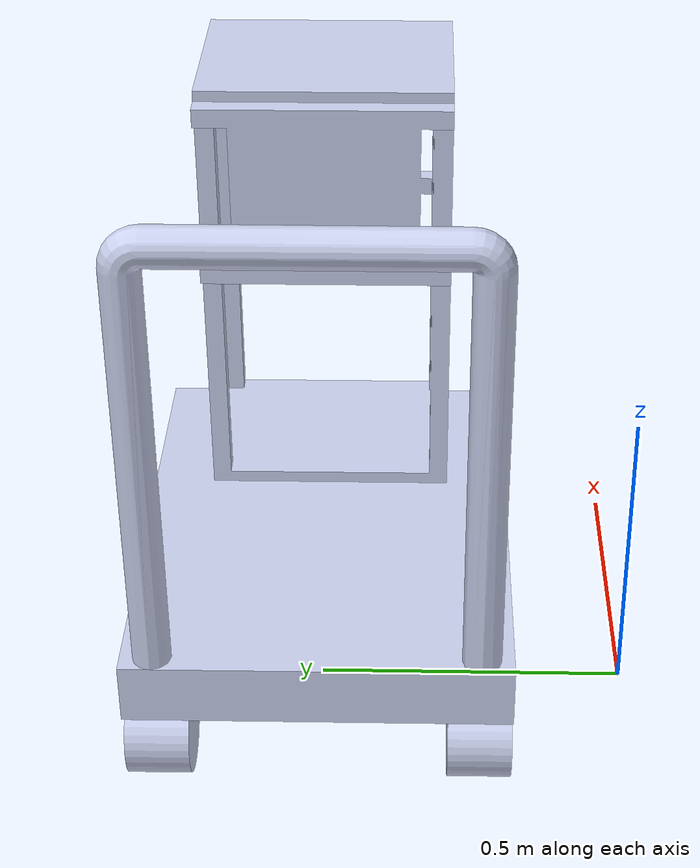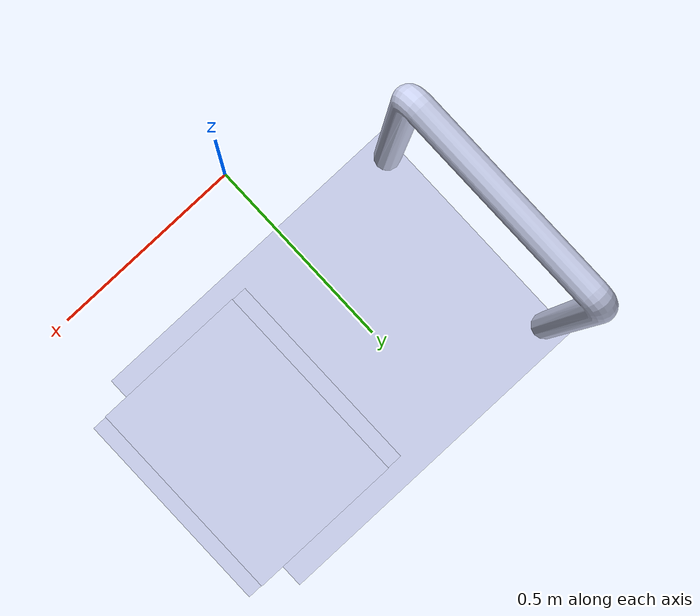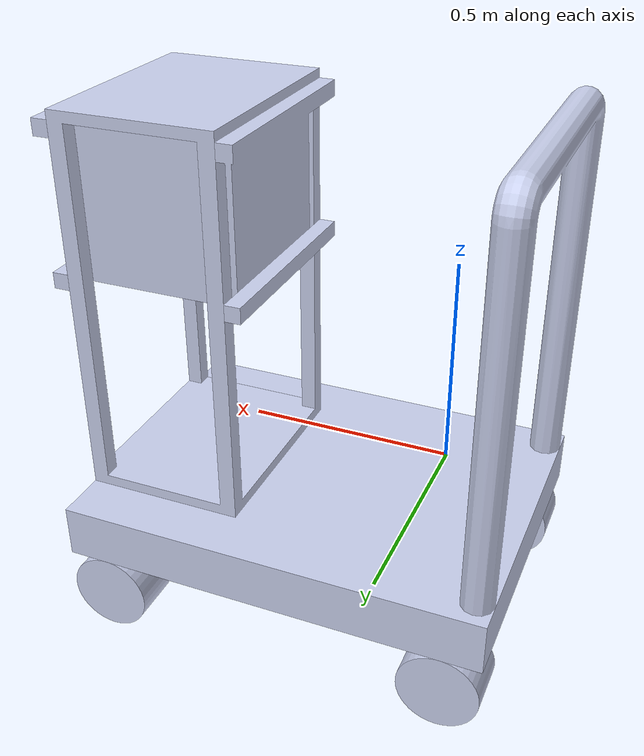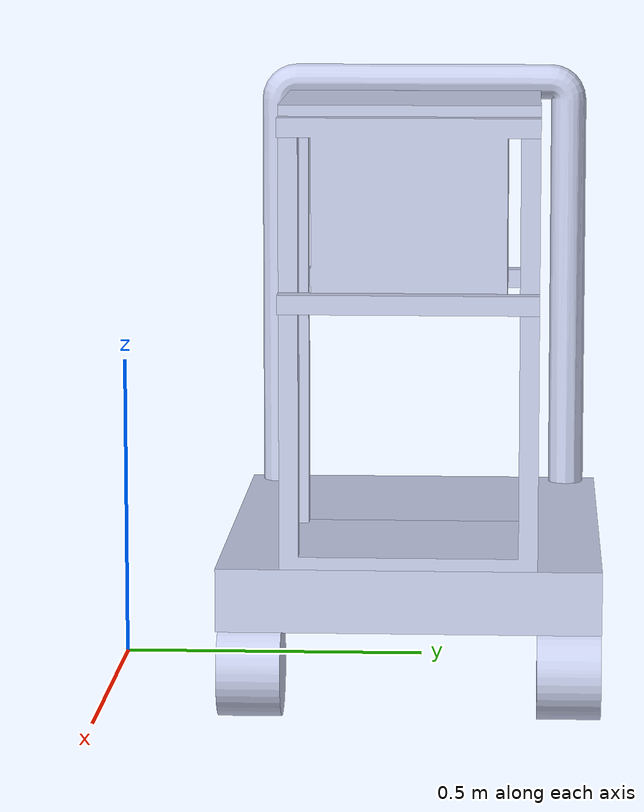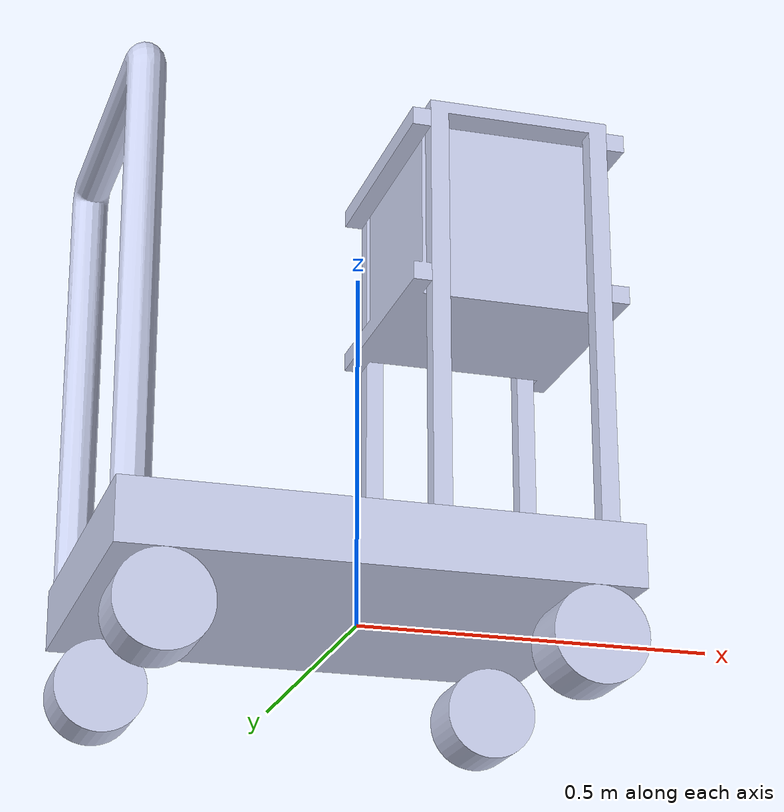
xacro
<?xml version="1.0" encoding="utf-8"?>
<robot
  xmlns:xacro="http://ros.org/wiki/xacro"
  name="trolley_urdf">
  <xacro:macro name="trolley_urdf_macro">
  <link
    name="trolley_base">
    <inertial>
      <origin
        xyz="0.10272 0.49366 0.2"
        rpy="0 0 0" />
      <mass
        value="48" />
      <inertia
        ixx="1.48"
        ixy="2.3463E-16"
        ixz="-9.3648E-33"
        iyy="2.6"
        iyz="1.1449E-17"
        izz="4" />
    </inertial>
    <visual>
      <origin
        xyz="0 0 0"
        rpy="0 0 0" />
      <geometry>
        <mesh
          filename="package://trolley_urdf/meshes/base_link.STL" />
      </geometry>
      <material
        name="">
        <color
          rgba="0.79216 0.81961 0.93333 1" />
      </material>
    </visual>
    <collision>
      <origin
        xyz="0 0 0"
        rpy="0 0 0" />
      <geometry>
        <mesh
          filename="package://trolley_urdf/meshes/base_link.STL" />
      </geometry>
    </collision>
  </link>
  <link
    name="wheel_1">
    <inertial>
      <origin
        xyz="-2.7756E-17 0.05 0"
        rpy="0 0 0" />
      <mass
        value="1.7671" />
      <inertia
        ixx="0.0039577"
        ixy="5.6646E-20"
        ixz="-6.4939E-20"
        iyy="0.0049701"
        iyz="5.8958E-20"
        izz="0.0039577" />
    </inertial>
    <visual>
      <origin
        xyz="0 0 0"
        rpy="0 0 0" />
      <geometry>
        <mesh
          filename="package://trolley_urdf/meshes/wheel_1.STL" />
      </geometry>
      <material
        name="">
        <color
          rgba="0.79216 0.81961 0.93333 1" />
      </material>
    </visual>
    <collision>
      <origin
        xyz="0 0 0"
        rpy="0 0 0" />
      <geometry>
        <mesh
          filename="package://trolley_urdf/meshes/wheel_1.STL" />
      </geometry>
    </collision>
  </link>
  <joint
    name="wheel_1_joint"
    type="continuous">
    <origin
      xyz="-0.22228 0.69366 0.075"
      rpy="0 0 0" />
    <parent
      link="trolley_base" />
    <child
      link="wheel_1" />
    <axis
      xyz="0 1 0" />
  </joint>
  <link
    name="wheel_2">
    <inertial>
      <origin
        xyz="0 0.05 0"
        rpy="0 0 0" />
      <mass
        value="1.7671" />
      <inertia
        ixx="0.0039577"
        ixy="-3.3704E-20"
        ixz="-2.2588E-20"
        iyy="0.0049701"
        iyz="1.0413E-19"
        izz="0.0039577" />
    </inertial>
    <visual>
      <origin
        xyz="0 0 0"
        rpy="0 0 0" />
      <geometry>
        <mesh
          filename="package://trolley_urdf/meshes/wheel_2.STL" />
      </geometry>
      <material
        name="">
        <color
          rgba="0.79216 0.81961 0.93333 1" />
      </material>
    </visual>
    <collision>
      <origin
        xyz="0 0 0"
        rpy="0 0 0" />
      <geometry>
        <mesh
          filename="package://trolley_urdf/meshes/wheel_2.STL" />
      </geometry>
    </collision>
  </link>
  <joint
    name="wheel_2_joint"
    type="continuous">
    <origin
      xyz="-0.22228 0.19366 0.075"
      rpy="0 0 0" />
    <parent
      link="trolley_base" />
    <child
      link="wheel_2" />
    <axis
      xyz="0 1 0" />
  </joint>
  <link
    name="wheel_3">
    <inertial>
      <origin
        xyz="-5.5511E-17 0.05 0"
        rpy="0 0 0" />
      <mass
        value="1.7671" />
      <inertia
        ixx="0.0039577"
        ixy="-2.8731E-19"
        ixz="-2.5129E-19"
        iyy="0.0049701"
        iyz="-6.1343E-20"
        izz="0.0039577" />
    </inertial>
    <visual>
      <origin
        xyz="0 0 0"
        rpy="0 0 0" />
      <geometry>
        <mesh
          filename="package://trolley_urdf/meshes/wheel_3.STL" />
      </geometry>
      <material
        name="">
        <color
          rgba="0.79216 0.81961 0.93333 1" />
      </material>
    </visual>
    <collision>
      <origin
        xyz="0 0 0"
        rpy="0 0 0" />
      <geometry>
        <mesh
          filename="package://trolley_urdf/meshes/wheel_3.STL" />
      </geometry>
    </collision>
  </link>
  <joint
    name="wheel_3_joint"
    type="continuous">
    <origin
      xyz="0.42772 0.19366 0.075"
      rpy="0 0 0" />
    <parent
      link="trolley_base" />
    <child
      link="wheel_3" />
    <axis
      xyz="0 1 0" />
  </joint>
  <link
    name="wheel_4">
    <inertial>
      <origin
        xyz="0 0.0500000000000002 0"
        rpy="0 0 0" />
      <mass
        value="1.76714586764426" />
      <inertia
        ixx="0.00395767043274496"
        ixy="5.66458023401988E-20"
        ixz="-1.97641021026003E-20"
        iyy="0.00497009775274948"
        iyz="8.15456627067693E-20"
        izz="0.00395767043274496" />
    </inertial>
    <visual>
      <origin
        xyz="0 0 0"
        rpy="0 0 0" />
      <geometry>
        <mesh
          filename="package://trolley_urdf/meshes/wheel_4.STL" />
      </geometry>
      <material
        name="">
        <color
          rgba="0.792156862745098 0.819607843137255 0.933333333333333 1" />
      </material>
    </visual>
    <collision>
      <origin
        xyz="0 0 0"
        rpy="0 0 0" />
      <geometry>
        <mesh
          filename="package://trolley_urdf/meshes/wheel_4.STL" />
      </geometry>
    </collision>
  </link>
  <joint
    name="wheel_4_joint"
    type="continuous">
    <origin
      xyz="0.42772 0.69366 0.075"
      rpy="0 0 0" />
    <parent
      link="trolley_base" />
    <child
      link="wheel_4" />
    <axis
      xyz="0 1 0" />
  </joint>
  <link
    name="handle_link">
    <inertial>
      <origin
        xyz="0 -0.19372 -0.17127"
        rpy="0 0 0" />
      <mass
        value="5.2993" />
      <inertia
        ixx="0.55873"
        ixy="3.1029E-17"
        ixz="3.1343E-19"
        iyy="0.2863"
        iyz="-1.0271E-15"
        izz="0.27482" />
    </inertial>
    <visual>
      <origin
        xyz="0 0 0"
        rpy="0 0 0" />
      <geometry>
        <mesh
          filename="package://trolley_urdf/meshes/handle_link.STL" />
      </geometry>
      <material
        name="">
        <color
          rgba="0.79216 0.81961 0.93333 1" />
      </material>
    </visual>
    <collision>
      <origin
        xyz="0 0 0"
        rpy="0 0 0" />
      <geometry>
        <mesh
          filename="package://trolley_urdf/meshes/handle_link.STL" />
      </geometry>
    </collision>
  </link>
  <joint
    name="handle_joint"
    type="fixed">
    <origin
      xyz="-0.26728 0.68738 0.86"
      rpy="0 0 0" />
    <parent
      link="trolley_base" />
    <child
      link="handle_link" />
    <axis
      xyz="0 0 0" />
  </joint>
  <link
    name="frame_link">
    <inertial>
      <origin
        xyz="0.01 -1.1102E-16 0.36"
        rpy="0 0 0" />
      <mass
        value="7.248" />
      <inertia
        ixx="0.83046"
        ixy="-5.2098E-17"
        ixz="-2.3037E-16"
        iyy="0.76329"
        iyz="-4.8663E-17"
        izz="0.22876" />
    </inertial>
    <visual>
      <origin
        xyz="0 0 0"
        rpy="0 0 0" />
      <geometry>
        <mesh
          filename="package://trolley_urdf/meshes/frame_link.STL" />
      </geometry>
      <material
        name="">
        <color
          rgba="0.79216 0.81961 0.93333 1" />
      </material>
    </visual>
    <collision>
      <origin
        xyz="0 0 0"
        rpy="0 0 0" />
      <geometry>
        <mesh
          filename="package://trolley_urdf/meshes/frame_link.STL" />
      </geometry>
    </collision>
  </link>
  <joint
    name="frame_joint"
    type="fixed">
    <origin
      xyz="0.34272 0.49366 0.25"
      rpy="0 0 0" />
    <parent
      link="trolley_base" />
    <child
      link="frame_link" />
    <axis
      xyz="0 0 0" />
  </joint>
  <link
    name="box_link">
    <inertial>
      <origin
        xyz="0.15 0.15 0.15"
        rpy="0 0 0" />
      <mass
        value="28.44" />
      <inertia
        ixx="0.450551999999999"
        ixy="-2.76726883595424E-17"
        ixz="-2.54109884176291E-17"
        iyy="0.470664"
        iyz="-1.46071550037944E-17"
        izz="0.463512" />
    </inertial>
    <visual>
      <origin
        xyz="0 0 0"
        rpy="0 0 0" />
      <geometry>
        <mesh
          filename="package://trolley_urdf/meshes/box_link.STL" />
      </geometry>
      <material
        name="">
        <color
          rgba="0.792156862745098 0.819607843137255 0.933333333333333 1" />
      </material>
    </visual>
    <collision>
      <origin
        xyz="0 0 0"
        rpy="0 0 0" />
      <geometry>
        <mesh
          filename="package://trolley_urdf/meshes/box_link.STL" />
      </geometry>
    </collision>
  </link>
  <joint
    name="box_joint"
    type="prismatic">
    <origin
      xyz="-0.14 -0.15 0.4028"
      rpy="0 0 0" />
    <parent
      link="frame_link" />
    <child
      link="box_link" />
    <axis
      xyz="0 0 1" />
    <limit
      lower="-0.35"
      upper="0"
      effort="1000"
      velocity="0" />
  </joint>
  </xacro:macro>
  <xacro:trolley_urdf_macro/>
</robot>
